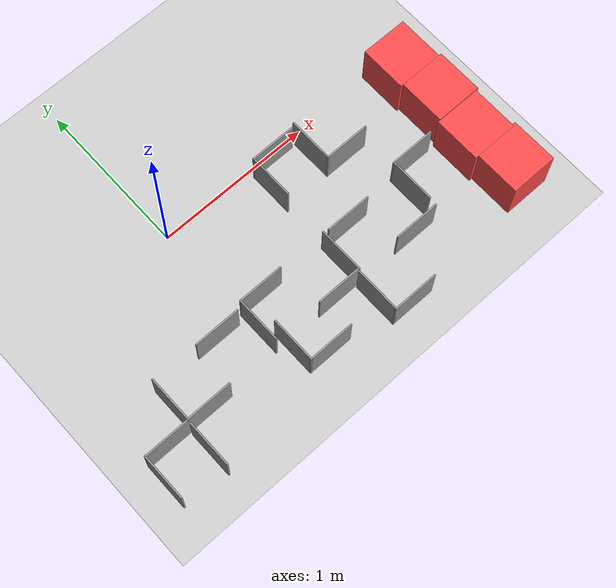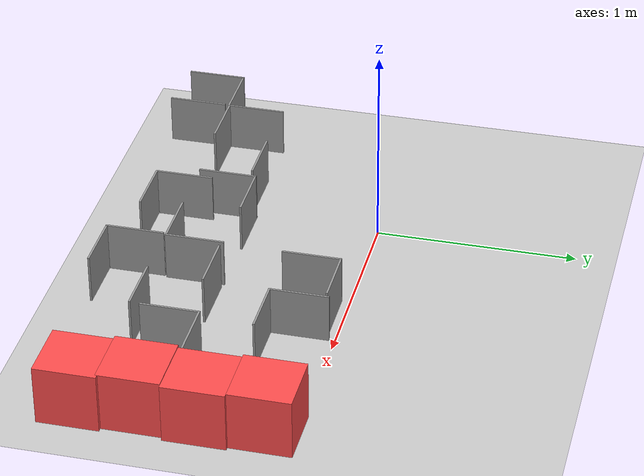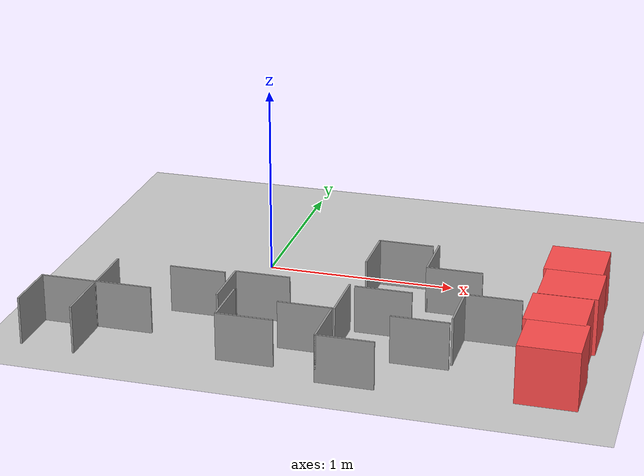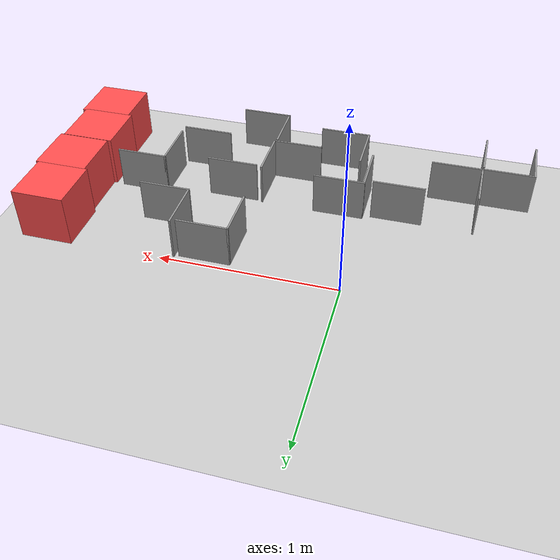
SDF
<sdf version="1.10">
 <world name="default">
  <model name="ground_plane">
   <static>true</static>
   <link name="link">
    <collision name="collision">
     <geometry><plane><normal>0 0 1</normal><size>1 1</size></plane></geometry>
    </collision>
    <visual name="visual">
     <geometry><plane><normal>0 0 1</normal><size>100 100</size></plane></geometry>
     <material>
      <ambient>0.800000012 0.800000012 0.800000012 1</ambient>
      <diffuse>0.800000012 0.800000012 0.800000012 1</diffuse>
      <specular>0.800000012 0.800000012 0.800000012 1</specular>
     </material>
    </visual>
    <inertial>
     <mass>1</mass>
     <inertia><ixx>1</ixx><ixy>0</ixy><ixz>0</ixz><iyy>1</iyy><iyz>0</iyz><izz>1</izz></inertia>
    </inertial>
   </link>
  </model>
  <model name="Box_Red_clone_3">
   <link name="link_0">
    <inertial>
     <mass>1</mass>
     <inertia>
      <ixx>0.166667</ixx>
      <ixy>0</ixy>
      <ixz>0</ixz>
      <iyy>0.166667</iyy>
      <iyz>0</iyz>
      <izz>0.166667</izz>
     </inertia>
    </inertial>
    <visual name="visual">
     <geometry><box><size>0.3 0.3 0.3</size></box></geometry>
     <material>
      <lighting>1</lighting>
      <script><uri>file://media/materials/scripts/gazebo.material</uri><name>Gazebo/Grey</name></script>
      <ambient>1 0.3 0.3 1</ambient>
      <diffuse>0.7 0.7 0.7 1</diffuse>
      <specular>0.01 0.01 0.01 1</specular>
      <emissive>0 0 0 1</emissive>
      <shader type="vertex"><normal_map>__default__</normal_map></shader>
     </material>
    </visual>
    <collision name="collision">
     <geometry><box><size>0.3 0.3 0.3</size></box></geometry>
     <surface>
      <friction>
       <ode><mu>1</mu><mu2>1</mu2><fdir1>0 0 0</fdir1><slip1>0</slip1><slip2>0</slip2></ode>
       <torsional>
        <coefficient>1</coefficient>
        <patch_radius>0</patch_radius>
        <surface_radius>0</surface_radius>
        <use_patch_radius>1</use_patch_radius>
        <ode><slip>0</slip></ode>
       </torsional>
      </friction>
      <bounce><restitution_coefficient>0</restitution_coefficient><threshold>1e+06</threshold></bounce>
      <contact>
       <collide_without_contact>0</collide_without_contact>
       <collide_without_contact_bitmask>1</collide_without_contact_bitmask>
       <collide_bitmask>1</collide_bitmask>
       <ode>
        <soft_cfm>0</soft_cfm>
        <soft_erp>0.2</soft_erp>
        <kp>1e+13</kp>
        <kd>1</kd>
        <max_vel>0.01</max_vel>
        <min_depth>0</min_depth>
       </ode>
       <bullet>
        <split_impulse>1</split_impulse>
        <split_impulse_penetration_threshold>-0.01</split_impulse_penetration_threshold>
        <soft_cfm>0</soft_cfm>
        <soft_erp>0.2</soft_erp>
        <kp>1e+13</kp>
        <kd>1</kd>
       </bullet>
      </contact>
     </surface>
    </collision>
   </link>
   <static>0</static>
   <pose>1.66792 -0.133217 0.15 0 0 -0.00339</pose>
  </model>
  <model name="Box_Red_clone_4">
   <link name="link_0">
    <inertial>
     <mass>1</mass>
     <inertia>
      <ixx>0.166667</ixx>
      <ixy>0</ixy>
      <ixz>0</ixz>
      <iyy>0.166667</iyy>
      <iyz>0</iyz>
      <izz>0.166667</izz>
     </inertia>
    </inertial>
    <visual name="visual">
     <geometry><box><size>0.3 0.3 0.3</size></box></geometry>
     <material>
      <lighting>1</lighting>
      <script><uri>file://media/materials/scripts/gazebo.material</uri><name>Gazebo/Grey</name></script>
      <ambient>1 0.3 0.3 1</ambient>
      <diffuse>0.7 0.7 0.7 1</diffuse>
      <specular>0.01 0.01 0.01 1</specular>
      <emissive>0 0 0 1</emissive>
      <shader type="vertex"><normal_map>__default__</normal_map></shader>
     </material>
    </visual>
    <collision name="collision">
     <geometry><box><size>0.3 0.3 0.3</size></box></geometry>
     <surface>
      <friction>
       <ode><mu>1</mu><mu2>1</mu2><fdir1>0 0 0</fdir1><slip1>0</slip1><slip2>0</slip2></ode>
       <torsional>
        <coefficient>1</coefficient>
        <patch_radius>0</patch_radius>
        <surface_radius>0</surface_radius>
        <use_patch_radius>1</use_patch_radius>
        <ode><slip>0</slip></ode>
       </torsional>
      </friction>
      <bounce><restitution_coefficient>0</restitution_coefficient><threshold>1e+06</threshold></bounce>
      <contact>
       <collide_without_contact>0</collide_without_contact>
       <collide_without_contact_bitmask>1</collide_without_contact_bitmask>
       <collide_bitmask>1</collide_bitmask>
       <ode>
        <soft_cfm>0</soft_cfm>
        <soft_erp>0.2</soft_erp>
        <kp>1e+13</kp>
        <kd>1</kd>
        <max_vel>0.01</max_vel>
        <min_depth>0</min_depth>
       </ode>
       <bullet>
        <split_impulse>1</split_impulse>
        <split_impulse_penetration_threshold>-0.01</split_impulse_penetration_threshold>
        <soft_cfm>0</soft_cfm>
        <soft_erp>0.2</soft_erp>
        <kp>1e+13</kp>
        <kd>1</kd>
       </bullet>
      </contact>
     </surface>
    </collision>
   </link>
   <static>0</static>
   <pose>1.68398 -0.432447 0.15 0 -0 -3.2e-05</pose>
  </model>
  <model name="Box_Red_clone_5">
   <link name="link_0">
    <inertial>
     <mass>1</mass>
     <inertia>
      <ixx>0.166667</ixx>
      <ixy>0</ixy>
      <ixz>0</ixz>
      <iyy>0.166667</iyy>
      <iyz>0</iyz>
      <izz>0.166667</izz>
     </inertia>
    </inertial>
    <visual name="visual">
     <geometry><box><size>0.3 0.3 0.3</size></box></geometry>
     <material>
      <lighting>1</lighting>
      <script><uri>file://media/materials/scripts/gazebo.material</uri><name>Gazebo/Grey</name></script>
      <ambient>1 0.3 0.3 1</ambient>
      <diffuse>0.7 0.7 0.7 1</diffuse>
      <specular>0.01 0.01 0.01 1</specular>
      <emissive>0 0 0 1</emissive>
      <shader type="vertex"><normal_map>__default__</normal_map></shader>
     </material>
    </visual>
    <collision name="collision">
     <geometry><box><size>0.3 0.3 0.3</size></box></geometry>
     <surface>
      <friction>
       <ode><mu>1</mu><mu2>1</mu2><fdir1>0 0 0</fdir1><slip1>0</slip1><slip2>0</slip2></ode>
       <torsional>
        <coefficient>1</coefficient>
        <patch_radius>0</patch_radius>
        <surface_radius>0</surface_radius>
        <use_patch_radius>1</use_patch_radius>
        <ode><slip>0</slip></ode>
       </torsional>
      </friction>
      <bounce><restitution_coefficient>0</restitution_coefficient><threshold>1e+06</threshold></bounce>
      <contact>
       <collide_without_contact>0</collide_without_contact>
       <collide_without_contact_bitmask>1</collide_without_contact_bitmask>
       <collide_bitmask>1</collide_bitmask>
       <ode>
        <soft_cfm>0</soft_cfm>
        <soft_erp>0.2</soft_erp>
        <kp>1e+13</kp>
        <kd>1</kd>
        <max_vel>0.01</max_vel>
        <min_depth>0</min_depth>
       </ode>
       <bullet>
        <split_impulse>1</split_impulse>
        <split_impulse_penetration_threshold>-0.01</split_impulse_penetration_threshold>
        <soft_cfm>0</soft_cfm>
        <soft_erp>0.2</soft_erp>
        <kp>1e+13</kp>
        <kd>1</kd>
       </bullet>
      </contact>
     </surface>
    </collision>
   </link>
   <static>0</static>
   <pose>1.66538 -0.734795 0.15 0 -0 -0.000105</pose>
  </model>
  <model name="Box_Red_clone_6">
   <link name="link_0">
    <inertial>
     <mass>1</mass>
     <inertia>
      <ixx>0.166667</ixx>
      <ixy>0</ixy>
      <ixz>0</ixz>
      <iyy>0.166667</iyy>
      <iyz>0</iyz>
      <izz>0.166667</izz>
     </inertia>
    </inertial>
    <visual name="visual">
     <geometry><box><size>0.3 0.3 0.3</size></box></geometry>
     <material>
      <lighting>1</lighting>
      <script><uri>file://media/materials/scripts/gazebo.material</uri><name>Gazebo/Grey</name></script>
      <ambient>1 0.3 0.3 1</ambient>
      <diffuse>0.7 0.7 0.7 1</diffuse>
      <specular>0.01 0.01 0.01 1</specular>
      <emissive>0 0 0 1</emissive>
      <shader type="vertex"><normal_map>__default__</normal_map></shader>
     </material>
    </visual>
    <collision name="collision">
     <geometry><box><size>0.3 0.3 0.3</size></box></geometry>
     <surface>
      <friction>
       <ode><mu>1</mu><mu2>1</mu2><fdir1>0 0 0</fdir1><slip1>0</slip1><slip2>0</slip2></ode>
       <torsional>
        <coefficient>1</coefficient>
        <patch_radius>0</patch_radius>
        <surface_radius>0</surface_radius>
        <use_patch_radius>1</use_patch_radius>
        <ode><slip>0</slip></ode>
       </torsional>
      </friction>
      <bounce><restitution_coefficient>0</restitution_coefficient><threshold>1e+06</threshold></bounce>
      <contact>
       <collide_without_contact>0</collide_without_contact>
       <collide_without_contact_bitmask>1</collide_without_contact_bitmask>
       <collide_bitmask>1</collide_bitmask>
       <ode>
        <soft_cfm>0</soft_cfm>
        <soft_erp>0.2</soft_erp>
        <kp>1e+13</kp>
        <kd>1</kd>
        <max_vel>0.01</max_vel>
        <min_depth>0</min_depth>
       </ode>
       <bullet>
        <split_impulse>1</split_impulse>
        <split_impulse_penetration_threshold>-0.01</split_impulse_penetration_threshold>
        <soft_cfm>0</soft_cfm>
        <soft_erp>0.2</soft_erp>
        <kp>1e+13</kp>
        <kd>1</kd>
       </bullet>
      </contact>
     </surface>
    </collision>
   </link>
   <static>0</static>
   <pose>1.6853 -1.02321 0.149998 4e-06 7e-06 -0.000786</pose>
  </model>
  <model name="Maze_L_RB_clone_1">
   <pose>1.0721 -0.173797 0 0 -0 0</pose>
   <link name="Wall_0">
    <collision name="Wall_0_Collision">
     <geometry><box><size>0.294 0.01 0.25</size></box></geometry>
     <pose>0 0 0.125 0 -0 0</pose>
    </collision>
    <visual name="Wall_0_Visual">
     <pose>0 0 0.125 0 -0 0</pose>
     <geometry><box><size>0.294 0.01 0.25</size></box></geometry>
     <material>
      <script><uri>file://media/materials/scripts/gazebo.material</uri><name>Gazebo/Grey</name></script>
      <ambient>1 1 1 1</ambient>
     </material>
     <meta><layer>0</layer></meta>
    </visual>
    <pose>0 -0.142 0 0 -0 0</pose>
   </link>
   <link name="Wall_2">
    <collision name="Wall_2_Collision">
     <geometry><box><size>0.294 0.01 0.25</size></box></geometry>
     <pose>0 0 0.125 0 -0 0</pose>
    </collision>
    <visual name="Wall_2_Visual">
     <pose>0 0 0.125 0 -0 0</pose>
     <geometry><box><size>0.294 0.01 0.25</size></box></geometry>
     <material>
      <script><uri>file://media/materials/scripts/gazebo.material</uri><name>Gazebo/Grey</name></script>
      <ambient>1 1 1 1</ambient>
     </material>
     <meta><layer>0</layer></meta>
    </visual>
    <pose>-0.142 0 0 0 -0 1.5708</pose>
   </link>
   <static>1</static>
  </model>
  <model name="Maze_L_LB_clone_0">
   <pose>0.757137 -0.187668 0 0 -0 0</pose>
   <link name="Wall_0">
    <collision name="Wall_0_Collision">
     <geometry><box><size>0.294 0.01 0.25</size></box></geometry>
     <pose>0 0 0.125 0 -0 0</pose>
    </collision>
    <visual name="Wall_0_Visual">
     <pose>0 0 0.125 0 -0 0</pose>
     <geometry><box><size>0.294 0.01 0.25</size></box></geometry>
     <material>
      <script><uri>file://media/materials/scripts/gazebo.material</uri><name>Gazebo/Grey</name></script>
      <ambient>1 1 1 1</ambient>
     </material>
     <meta><layer>0</layer></meta>
    </visual>
    <pose>0 0.142 0 0 -0 0</pose>
   </link>
   <link name="Wall_2">
    <collision name="Wall_2_Collision">
     <geometry><box><size>0.294 0.01 0.25</size></box></geometry>
     <pose>0 0 0.125 0 -0 0</pose>
    </collision>
    <visual name="Wall_2_Visual">
     <pose>0 0 0.125 0 -0 0</pose>
     <geometry><box><size>0.294 0.01 0.25</size></box></geometry>
     <material>
      <script><uri>file://media/materials/scripts/gazebo.material</uri><name>Gazebo/Grey</name></script>
      <ambient>1 1 1 1</ambient>
     </material>
     <meta><layer>0</layer></meta>
    </visual>
    <pose>-0.142 0 0 0 0 -1.5708</pose>
   </link>
   <static>1</static>
  </model>
  <model name="Maze_L_LB_clone_1">
   <pose>1.32262 -0.72754 0 0 -0 0</pose>
   <link name="Wall_0">
    <collision name="Wall_0_Collision">
     <geometry><box><size>0.294 0.01 0.25</size></box></geometry>
     <pose>0 0 0.125 0 -0 0</pose>
    </collision>
    <visual name="Wall_0_Visual">
     <pose>0 0 0.125 0 -0 0</pose>
     <geometry><box><size>0.294 0.01 0.25</size></box></geometry>
     <material>
      <script><uri>file://media/materials/scripts/gazebo.material</uri><name>Gazebo/Grey</name></script>
      <ambient>1 1 1 1</ambient>
     </material>
     <meta><layer>0</layer></meta>
    </visual>
    <pose>0 0.142 0 0 -0 0</pose>
   </link>
   <link name="Wall_2">
    <collision name="Wall_2_Collision">
     <geometry><box><size>0.294 0.01 0.25</size></box></geometry>
     <pose>0 0 0.125 0 -0 0</pose>
    </collision>
    <visual name="Wall_2_Visual">
     <pose>0 0 0.125 0 -0 0</pose>
     <geometry><box><size>0.294 0.01 0.25</size></box></geometry>
     <material>
      <script><uri>file://media/materials/scripts/gazebo.material</uri><name>Gazebo/Grey</name></script>
      <ambient>1 1 1 1</ambient>
     </material>
     <meta><layer>0</layer></meta>
    </visual>
    <pose>-0.142 0 0 0 0 -1.5708</pose>
   </link>
   <static>1</static>
  </model>
  <model name="Maze_I_V_clone">
   <pose>1.03157 -0.924094 0 0 -0 0</pose>
   <link name="Wall_0">
    <collision name="Wall_0_Collision">
     <geometry><box><size>0.294 0.01 0.25</size></box></geometry>
     <pose>0 0 0.125 0 -0 0</pose>
    </collision>
    <visual name="Wall_0_Visual">
     <pose>0 0 0.125 0 -0 0</pose>
     <geometry><box><size>0.294 0.01 0.25</size></box></geometry>
     <material>
      <script><uri>file://media/materials/scripts/gazebo.material</uri><name>Gazebo/Grey</name></script>
      <ambient>1 1 1 1</ambient>
     </material>
     <meta><layer>0</layer></meta>
    </visual>
   </link>
   <static>1</static>
  </model>
  <model name="Maze_L_RB_clone_2">
   <pose>0.736362 -1.07561 0 0 -0 0</pose>
   <link name="Wall_0">
    <collision name="Wall_0_Collision">
     <geometry><box><size>0.294 0.01 0.25</size></box></geometry>
     <pose>0 0 0.125 0 -0 0</pose>
    </collision>
    <visual name="Wall_0_Visual">
     <pose>0 0 0.125 0 -0 0</pose>
     <geometry><box><size>0.294 0.01 0.25</size></box></geometry>
     <material>
      <script><uri>file://media/materials/scripts/gazebo.material</uri><name>Gazebo/Grey</name></script>
      <ambient>1 1 1 1</ambient>
     </material>
     <meta><layer>0</layer></meta>
    </visual>
    <pose>0 -0.142 0 0 -0 0</pose>
   </link>
   <link name="Wall_2">
    <collision name="Wall_2_Collision">
     <geometry><box><size>0.294 0.01 0.25</size></box></geometry>
     <pose>0 0 0.125 0 -0 0</pose>
    </collision>
    <visual name="Wall_2_Visual">
     <pose>0 0 0.125 0 -0 0</pose>
     <geometry><box><size>0.294 0.01 0.25</size></box></geometry>
     <material>
      <script><uri>file://media/materials/scripts/gazebo.material</uri><name>Gazebo/Grey</name></script>
      <ambient>1 1 1 1</ambient>
     </material>
     <meta><layer>0</layer></meta>
    </visual>
    <pose>-0.142 0 0 0 -0 1.5708</pose>
   </link>
   <static>1</static>
  </model>
  <model name="Maze_L_RU_clone">
   <pose>0.463049 -0.773506 0 0 -0 0</pose>
   <link name="Wall_11">
    <collision name="Wall_11_Collision">
     <geometry><box><size>0.294 0.01 0.25</size></box></geometry>
     <pose>0 0 0.125 0 -0 0</pose>
    </collision>
    <visual name="Wall_11_Visual">
     <pose>0 0 0.125 0 -0 0</pose>
     <geometry><box><size>0.294 0.01 0.25</size></box></geometry>
     <material>
      <script><uri>file://media/materials/scripts/gazebo.material</uri><name>Gazebo/Grey</name></script>
      <ambient>1 1 1 1</ambient>
     </material>
     <meta><layer>0</layer></meta>
    </visual>
    <pose>0 -0.142 0 0 -0 0</pose>
   </link>
   <link name="Wall_12">
    <collision name="Wall_12_Collision">
     <geometry><box><size>0.294 0.01 0.25</size></box></geometry>
     <pose>0 0 0.125 0 -0 0</pose>
    </collision>
    <visual name="Wall_12_Visual">
     <pose>0 0 0.125 0 -0 0</pose>
     <geometry><box><size>0.294 0.01 0.25</size></box></geometry>
     <material>
      <script><uri>file://media/materials/scripts/gazebo.material</uri><name>Gazebo/Grey</name></script>
      <ambient>1 1 1 1</ambient>
     </material>
     <meta><layer>0</layer></meta>
    </visual>
    <pose>0.142 0 0 0 -0 1.5708</pose>
   </link>
   <static>1</static>
  </model>
  <model name="Maze_I_V_clone_0">
   <pose>0.781273 -0.640246 0 0 -0 0</pose>
   <link name="Wall_0">
    <collision name="Wall_0_Collision">
     <geometry><box><size>0.294 0.01 0.25</size></box></geometry>
     <pose>0 0 0.125 0 -0 0</pose>
    </collision>
    <visual name="Wall_0_Visual">
     <pose>0 0 0.125 0 -0 0</pose>
     <geometry><box><size>0.294 0.01 0.25</size></box></geometry>
     <material>
      <script><uri>file://media/materials/scripts/gazebo.material</uri><name>Gazebo/Grey</name></script>
      <ambient>1 1 1 1</ambient>
     </material>
     <meta><layer>0</layer></meta>
    </visual>
   </link>
   <static>1</static>
  </model>
  <model name="Maze_L_RB_clone_3">
   <pose>0.211388 -0.979436 0 0 -0 0</pose>
   <link name="Wall_0">
    <collision name="Wall_0_Collision">
     <geometry><box><size>0.294 0.01 0.25</size></box></geometry>
     <pose>0 0 0.125 0 -0 0</pose>
    </collision>
    <visual name="Wall_0_Visual">
     <pose>0 0 0.125 0 -0 0</pose>
     <geometry><box><size>0.294 0.01 0.25</size></box></geometry>
     <material>
      <script><uri>file://media/materials/scripts/gazebo.material</uri><name>Gazebo/Grey</name></script>
      <ambient>1 1 1 1</ambient>
     </material>
     <meta><layer>0</layer></meta>
    </visual>
    <pose>0 -0.142 0 0 -0 0</pose>
   </link>
   <link name="Wall_2">
    <collision name="Wall_2_Collision">
     <geometry><box><size>0.294 0.01 0.25</size></box></geometry>
     <pose>0 0 0.125 0 -0 0</pose>
    </collision>
    <visual name="Wall_2_Visual">
     <pose>0 0 0.125 0 -0 0</pose>
     <geometry><box><size>0.294 0.01 0.25</size></box></geometry>
     <material>
      <script><uri>file://media/materials/scripts/gazebo.material</uri><name>Gazebo/Grey</name></script>
      <ambient>1 1 1 1</ambient>
     </material>
     <meta><layer>0</layer></meta>
    </visual>
    <pose>-0.142 0 0 0 -0 1.5708</pose>
   </link>
   <static>1</static>
  </model>
  <model name="Maze_L_LB_clone_3">
   <pose>0.14841 -0.769588 0 0 -0 0</pose>
   <link name="Wall_0">
    <collision name="Wall_0_Collision">
     <geometry><box><size>0.294 0.01 0.25</size></box></geometry>
     <pose>0 0 0.125 0 -0 0</pose>
    </collision>
    <visual name="Wall_0_Visual">
     <pose>0 0 0.125 0 -0 0</pose>
     <geometry><box><size>0.294 0.01 0.25</size></box></geometry>
     <material>
      <script><uri>file://media/materials/scripts/gazebo.material</uri><name>Gazebo/Grey</name></script>
      <ambient>1 1 1 1</ambient>
     </material>
     <meta><layer>0</layer></meta>
    </visual>
    <pose>0 0.142 0 0 -0 0</pose>
   </link>
   <link name="Wall_2">
    <collision name="Wall_2_Collision">
     <geometry><box><size>0.294 0.01 0.25</size></box></geometry>
     <pose>0 0 0.125 0 -0 0</pose>
    </collision>
    <visual name="Wall_2_Visual">
     <pose>0 0 0.125 0 -0 0</pose>
     <geometry><box><size>0.294 0.01 0.25</size></box></geometry>
     <material>
      <script><uri>file://media/materials/scripts/gazebo.material</uri><name>Gazebo/Grey</name></script>
      <ambient>1 1 1 1</ambient>
     </material>
     <meta><layer>0</layer></meta>
    </visual>
    <pose>-0.142 0 0 0 0 -1.5708</pose>
   </link>
   <static>1</static>
  </model>
  <model name="Maze_I_V_clone_1">
   <pose>-0.185896 -0.656137 0 0 -0 0</pose>
   <link name="Wall_0">
    <collision name="Wall_0_Collision">
     <geometry><box><size>0.294 0.01 0.25</size></box></geometry>
     <pose>0 0 0.125 0 -0 0</pose>
    </collision>
    <visual name="Wall_0_Visual">
     <pose>0 0 0.125 0 -0 0</pose>
     <geometry><box><size>0.294 0.01 0.25</size></box></geometry>
     <material>
      <script><uri>file://media/materials/scripts/gazebo.material</uri><name>Gazebo/Grey</name></script>
      <ambient>1 1 1 1</ambient>
     </material>
     <meta><layer>0</layer></meta>
    </visual>
   </link>
   <static>1</static>
  </model>
  <model name="Maze_L_LB_clone_5">
   <pose>-0.772472 -1.07882 0 0 -0 0</pose>
   <link name="Wall_0">
    <collision name="Wall_0_Collision">
     <geometry><box><size>0.294 0.01 0.25</size></box></geometry>
     <pose>0 0 0.125 0 -0 0</pose>
    </collision>
    <visual name="Wall_0_Visual">
     <pose>0 0 0.125 0 -0 0</pose>
     <geometry><box><size>0.294 0.01 0.25</size></box></geometry>
     <material>
      <script><uri>file://media/materials/scripts/gazebo.material</uri><name>Gazebo/Grey</name></script>
      <ambient>1 1 1 1</ambient>
     </material>
     <meta><layer>0</layer></meta>
    </visual>
    <pose>0 0.142 0 0 -0 0</pose>
   </link>
   <link name="Wall_2">
    <collision name="Wall_2_Collision">
     <geometry><box><size>0.294 0.01 0.25</size></box></geometry>
     <pose>0 0 0.125 0 -0 0</pose>
    </collision>
    <visual name="Wall_2_Visual">
     <pose>0 0 0.125 0 -0 0</pose>
     <geometry><box><size>0.294 0.01 0.25</size></box></geometry>
     <material>
      <script><uri>file://media/materials/scripts/gazebo.material</uri><name>Gazebo/Grey</name></script>
      <ambient>1 1 1 1</ambient>
     </material>
     <meta><layer>0</layer></meta>
    </visual>
    <pose>-0.142 0 0 0 0 -1.5708</pose>
   </link>
   <static>1</static>
  </model>
  <model name="Maze_L_RB_clone_4">
   <pose>-0.481784 -0.791254 0 0 -0 0</pose>
   <link name="Wall_0">
    <collision name="Wall_0_Collision">
     <geometry><box><size>0.294 0.01 0.25</size></box></geometry>
     <pose>0 0 0.125 0 -0 0</pose>
    </collision>
    <visual name="Wall_0_Visual">
     <pose>0 0 0.125 0 -0 0</pose>
     <geometry><box><size>0.294 0.01 0.25</size></box></geometry>
     <material>
      <script><uri>file://media/materials/scripts/gazebo.material</uri><name>Gazebo/Grey</name></script>
      <ambient>1 1 1 1</ambient>
     </material>
     <meta><layer>0</layer></meta>
    </visual>
    <pose>0 -0.142 0 0 -0 0</pose>
   </link>
   <link name="Wall_2">
    <collision name="Wall_2_Collision">
     <geometry><box><size>0.294 0.01 0.25</size></box></geometry>
     <pose>0 0 0.125 0 -0 0</pose>
    </collision>
    <visual name="Wall_2_Visual">
     <pose>0 0 0.125 0 -0 0</pose>
     <geometry><box><size>0.294 0.01 0.25</size></box></geometry>
     <material>
      <script><uri>file://media/materials/scripts/gazebo.material</uri><name>Gazebo/Grey</name></script>
      <ambient>1 1 1 1</ambient>
     </material>
     <meta><layer>0</layer></meta>
    </visual>
    <pose>-0.142 0 0 0 -0 1.5708</pose>
   </link>
   <static>1</static>
  </model>
  <model name="Maze_I_H_clone_7">
   <pose>-0.627985 -1.10425 0 0 -0 0</pose>
   <link name="Wall_0">
    <collision name="Wall_0_Collision">
     <geometry><box><size>0.294 0.01 0.25</size></box></geometry>
     <pose>0 0 0.125 0 -0 0</pose>
    </collision>
    <visual name="Wall_0_Visual">
     <pose>0 0 0.125 0 -0 0</pose>
     <geometry><box><size>0.294 0.01 0.25</size></box></geometry>
     <material>
      <script><uri>file://media/materials/scripts/gazebo.material</uri><name>Gazebo/Grey</name></script>
      <ambient>1 1 1 1</ambient>
     </material>
     <meta><layer>0</layer></meta>
    </visual>
    <pose>0 0 0 0 -0 1.5708</pose>
   </link>
   <static>1</static>
  </model>
 </world>
</sdf>
